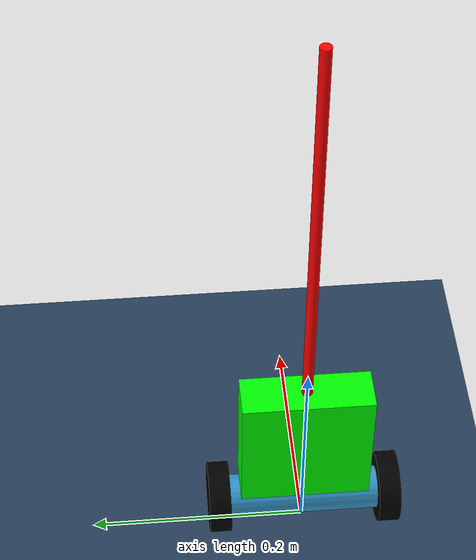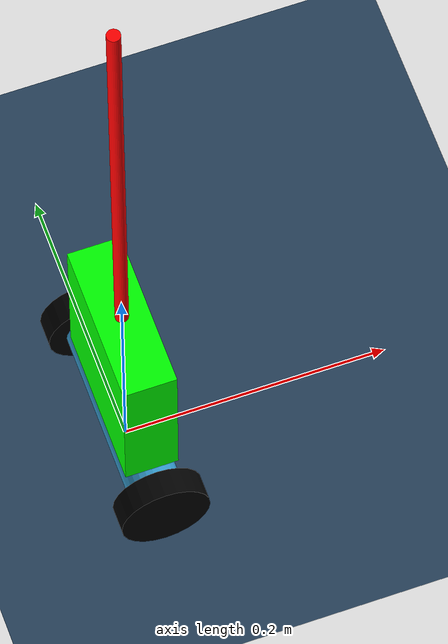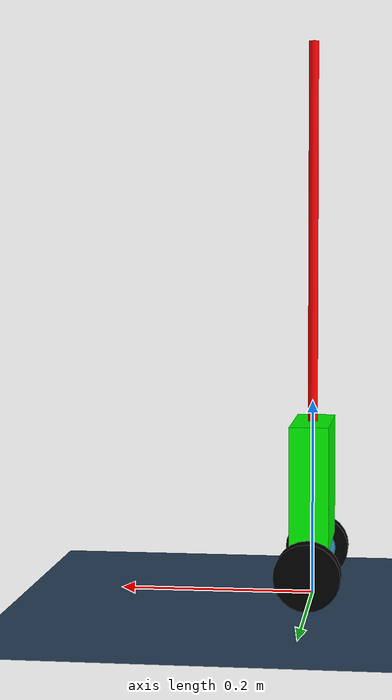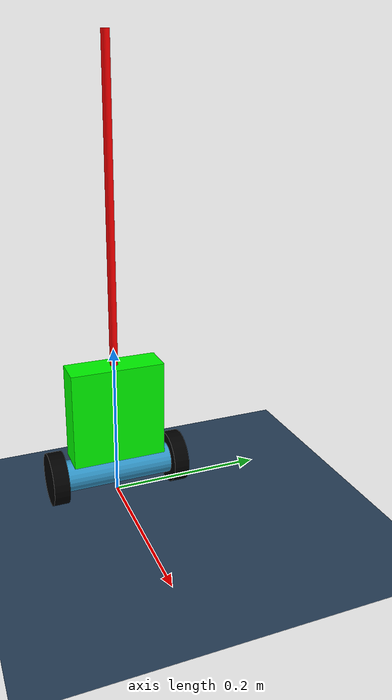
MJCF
<mujoco model="two_link_inverted_pendulum_car">
<!-- 编译器选项  -->
  <compiler
      coordinate="local"
      angle="degree"
      autolimits="true"/>

<!--配置dt-->
  <option
      timestep="0.002"
      integrator="RK4"
      cone="elliptic"/>

<!--上面的部分暂时注释掉,防止额外计算,我们可以通过RL env中限制poles的角度为终止条件,穿模可忽略-->

<!--模板配置-->
  <default>
    <joint damping="0.002" armature="0.001"/>
    <geom condim="3" friction="0.8 0.01 0.005" solref="0.01 1" solimp="0.9 0.95 0.001"/>
    <motor ctrlrange="-1 1"/>
  </default>

<!--美观的地板😃-->
  <asset>
    <texture name="grid" type="2d" builtin="checker" rgb1=".1 .2 .3"
     rgb2=".2 .3 .4" width="300" height="300"/>
    <material name="grid" texture="grid" texrepeat="8 8" reflectance=".2"/>
  </asset>

  <worldbody>
    <geom name="ground" size="3 3 .1" type="plane" material="grid"/>

    <light pos="0 0 3"/>

 <!--重量的分配:底盘0.5kg+车身0.4kg+杆子0.1kg ;两轮子0.1kg总计1.1,有待商榷-->
    <body name="chassis" pos="0 0 0.0335">
        <joint name="chassis" type="slide" axis="1 0 0" range="-3 3"/>

        <geom name="chassis" type="cylinder" size="0.02 0.08" rgba="0.2 0.6 0.8 1" zaxis="0 1 0" mass="0.5"/>

        <body name="left_wheel" pos="0 0.08 0">
            <joint name="left_wheel" type="hinge" damping="0.01" armature="0.04" axis="0 1 0"/>
            <geom name="left_wheel" type="cylinder" size="0.0335 0.01" rgba="0 0 0 1" zaxis="0 1 0" mass="0.05"/>
        </body>

        <body name="right_wheel" pos="0 -0.08 0">
            <joint name="right_wheel" type="hinge" damping="0.01" armature="0.04" axis="0 1 0"/>
            <geom name="right_wheel" type="cylinder" size="0.0335 0.01" rgba="0 0 0 1" zaxis="0 1 0" mass="0.05"/>
        </body>

        <body name="pole1" pos="0 0 0.02">
            <joint name="pole1" type="hinge" axis="0 1 0"/>
            <geom name="pole1" type="box" pos="0 0 0.063" size="0.02 0.06 0.063" rgba="0 1 0 1" mass="0.4"/>

            <body name="pole2" pos="0 0 0.126">
                <joint name="pole2" type="hinge" axis="0 1 0"/>
                <geom name="pole2" type="cylinder" pos="0 0 0.195" size="0.005 0.195" rgba="1 0 0 1" zaxis="0 0 1" mass="0.1"/>
            </body>
        </body>

    </body>
  </worldbody>

<!--电机,提供力矩,左右轮,电机型号官网找的,Gemini推荐的ctrlrange和gear参数,以及joint中损耗相关-->
  <actuator>
    <motor name="left_motor"  joint="left_wheel"  gear="2.4"/>
    <motor name="right_motor" joint="right_wheel" gear="2.4"/>
  </actuator>

<!--模拟传感器,8个变量-->
  <sensor>
    <!--qpos:-->
    <jointpos name="theta_left" joint="left_wheel"/>
    <jointpos name="theta_right" joint="right_wheel"/>
    <jointpos name="theta_pole1" joint="pole1"/>
    <jointpos name="theta_pole2" joint="pole2"/>
    <!--qvel:-->
    <jointvel name="theta_left_dot" joint="left_wheel"/>
    <jointvel name="theta_right_dot" joint="right_wheel"/>
    <jointvel name="theta_pole1_dot" joint="pole1"/>
    <jointvel name="theta_pole2_dot" joint="pole2"/>

  </sensor>
</mujoco>
